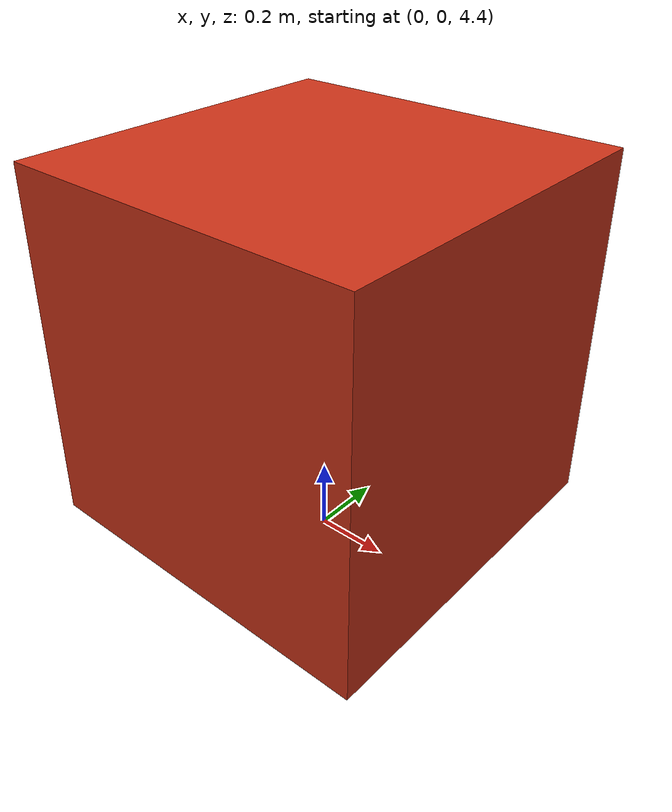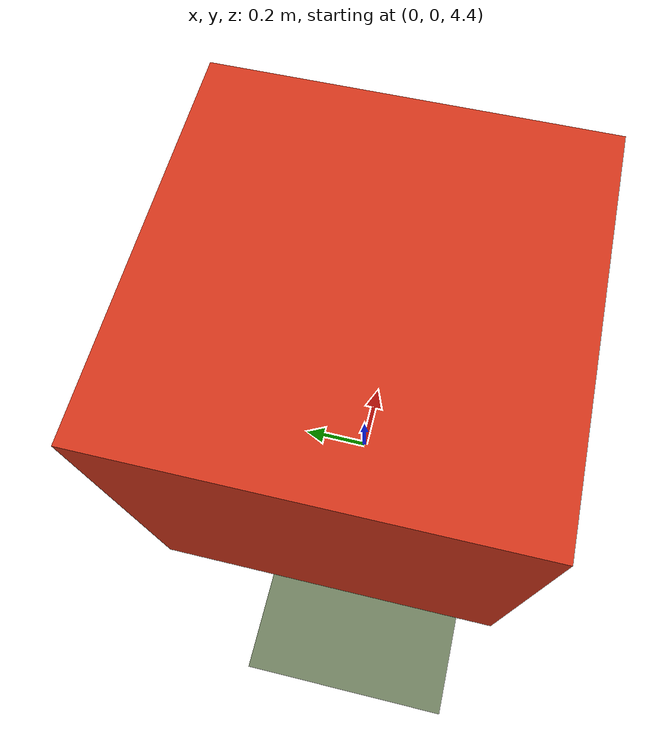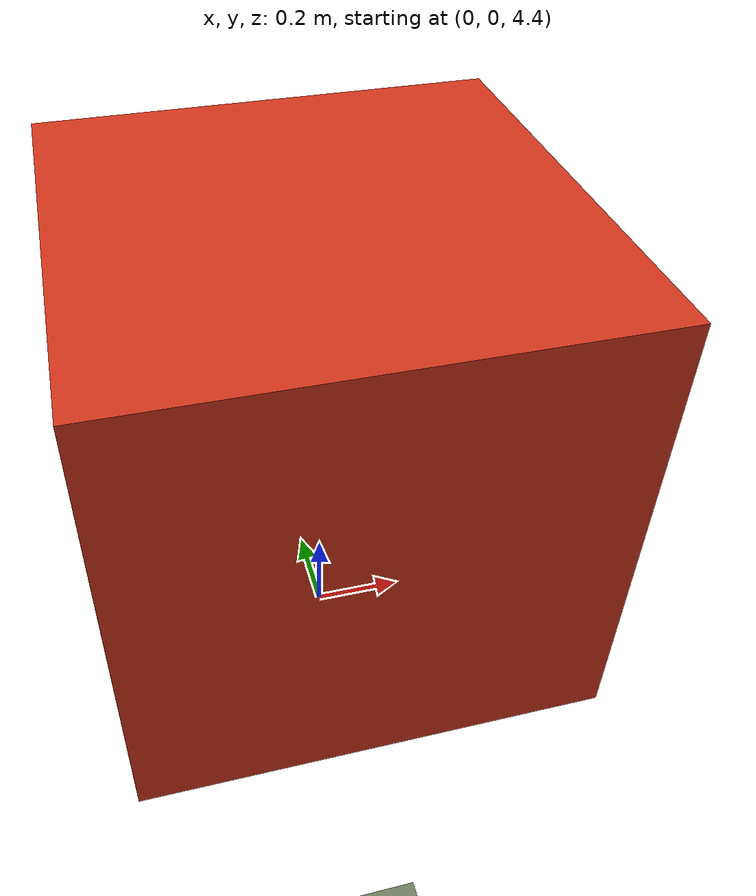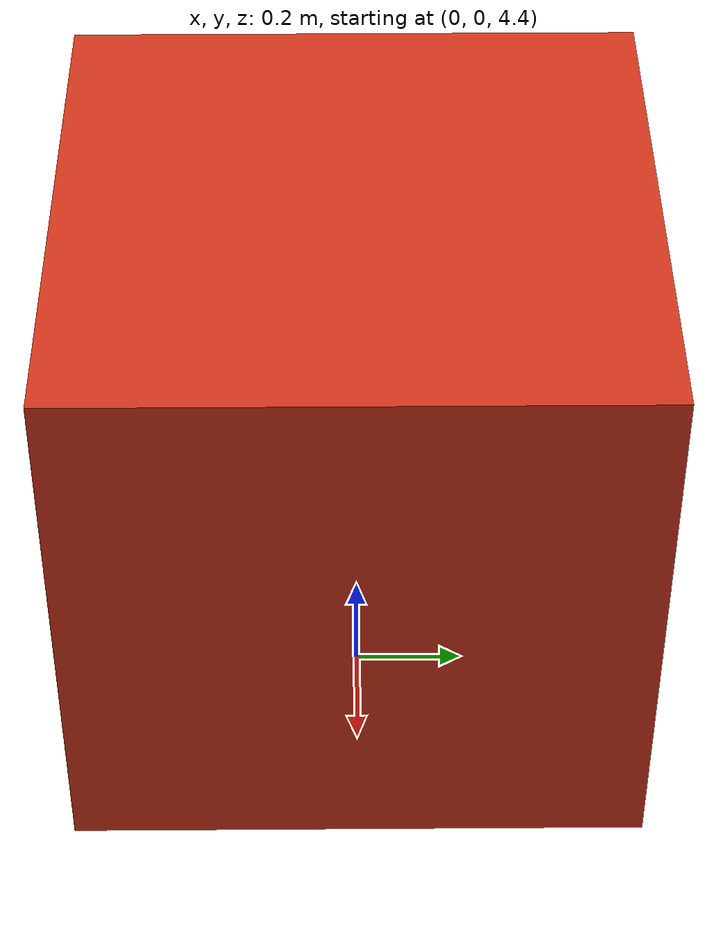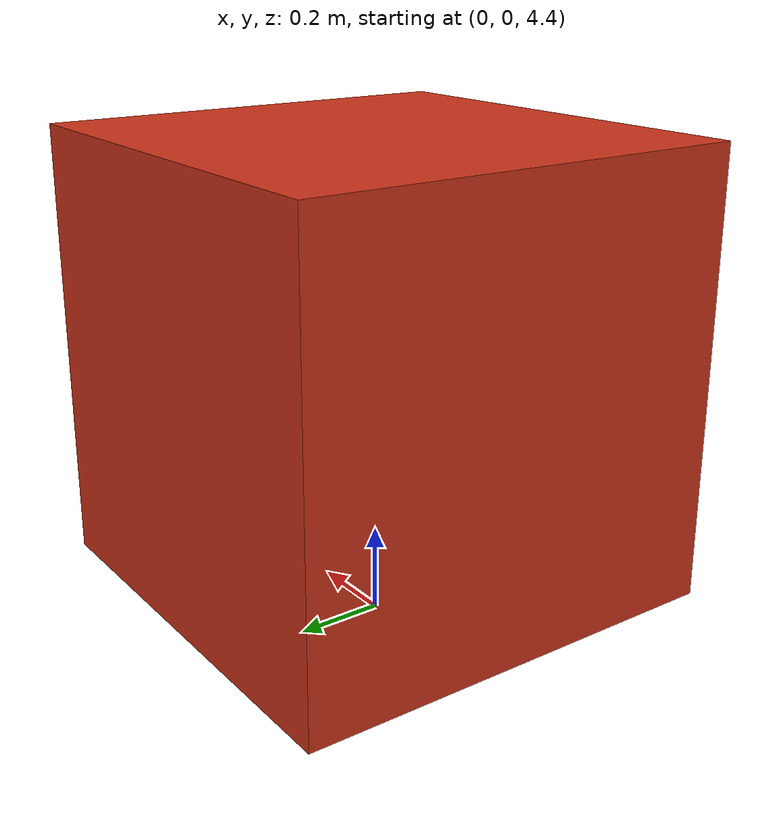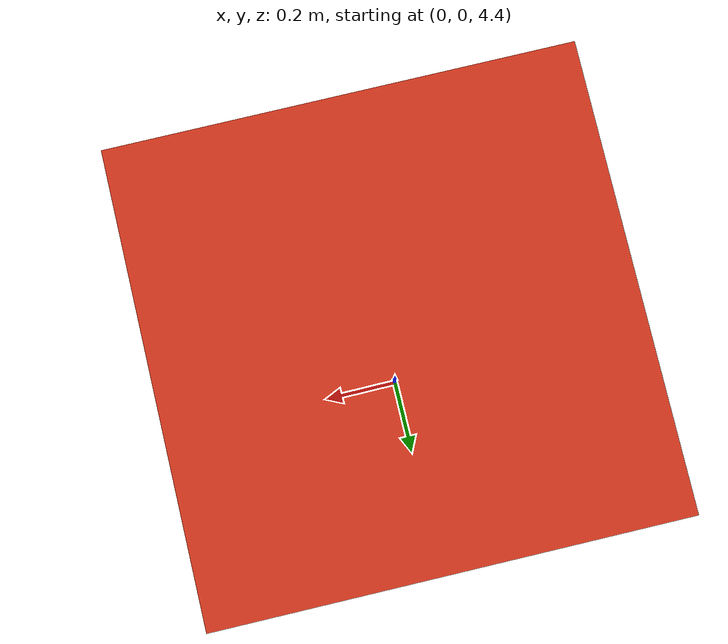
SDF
<?xml version="1.0"?>
<sdf version="1.10">
  <world name="basic_terrain">
    <physics name="default_physics" type="ignored">
      <max_step_size>0.001</max_step_size>
      <real_time_factor>1.0</real_time_factor>
    </physics>

    <light name="sun" type="directional">
      <cast_shadows>true</cast_shadows>
      <pose>0 0 10 0 0 0</pose>
      <diffuse>0.8 0.8 0.8 1</diffuse>
      <specular>0.2 0.2 0.2 1</specular>
      <direction>-0.5 0.1 -0.9</direction>
    </light>

    <include>
      <pose>0 0 1 0 0 0</pose>
      <uri>model://ground_terrain</uri>
    </include>

    <include>
      <uri>model://falling_box</uri>
      <pose>0 0 5 0 0 0</pose>
    </include>
  </world>
</sdf>

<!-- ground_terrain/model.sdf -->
<sdf version="1.10">
  <model name="ground_terrain">
    <static>true</static>
    <link name="terrain_link">
      <visual name="terrain_visual">
        <geometry>
          <mesh>
            <uri>model://ground_terrain/meshes/ground_terrain.dae</uri>
          </mesh>
        </geometry>
      </visual>
      <collision name="terrain_collision">
        <geometry>
          <mesh>
            <uri>model://ground_terrain/meshes/ground_terrain.dae</uri>
          </mesh>
        </geometry>
      </collision>
    </link>
  </model>
</sdf>

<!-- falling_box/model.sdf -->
<sdf version="1.10">
  <model name="falling_box">
    <static>false</static>
    <link name="box_link">
      <inertial>
        <mass>1.0</mass>
        <inertia>
          <ixx>0.1667</ixx>
          <iyy>0.1667</iyy>
          <izz>0.1667</izz>
        </inertia>
      </inertial>
      <visual name="box_visual">
        <geometry>
          <box>
            <size>1 1 1</size>
          </box>
        </geometry>
        <material>
          <diffuse>0.8 0.2 0.1 1</diffuse>
        </material>
      </visual>
      <collision name="box_collision">
        <geometry>
          <box>
            <size>1 1 1</size>
          </box>
        </geometry>
      </collision>
    </link>
  </model>
</sdf>
